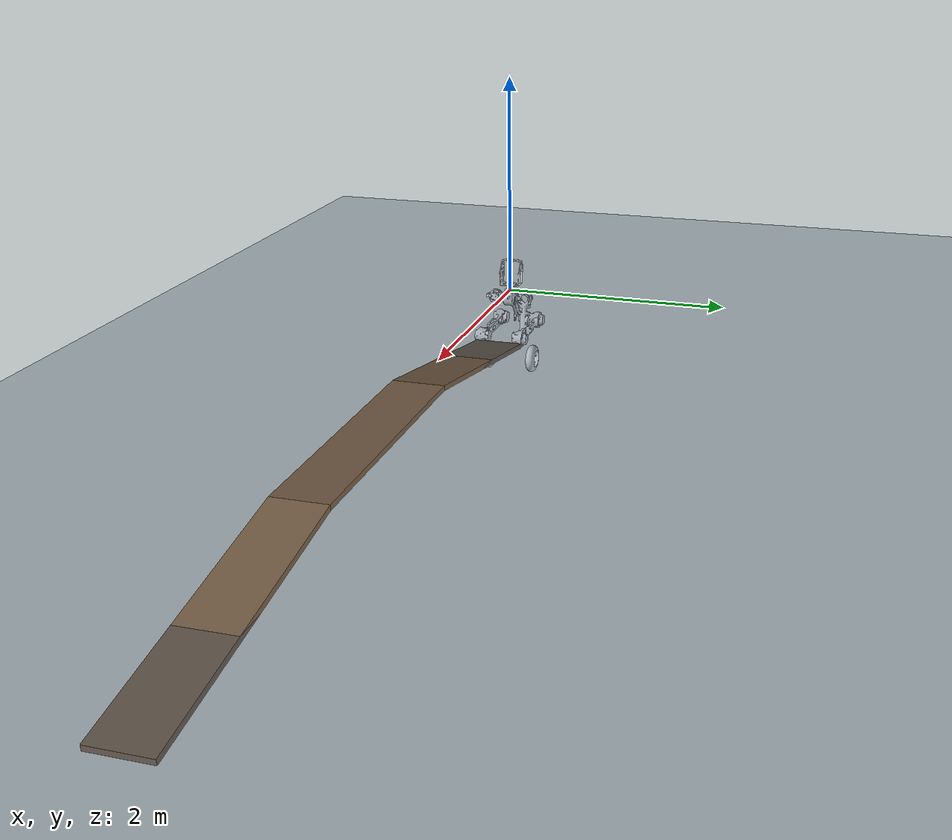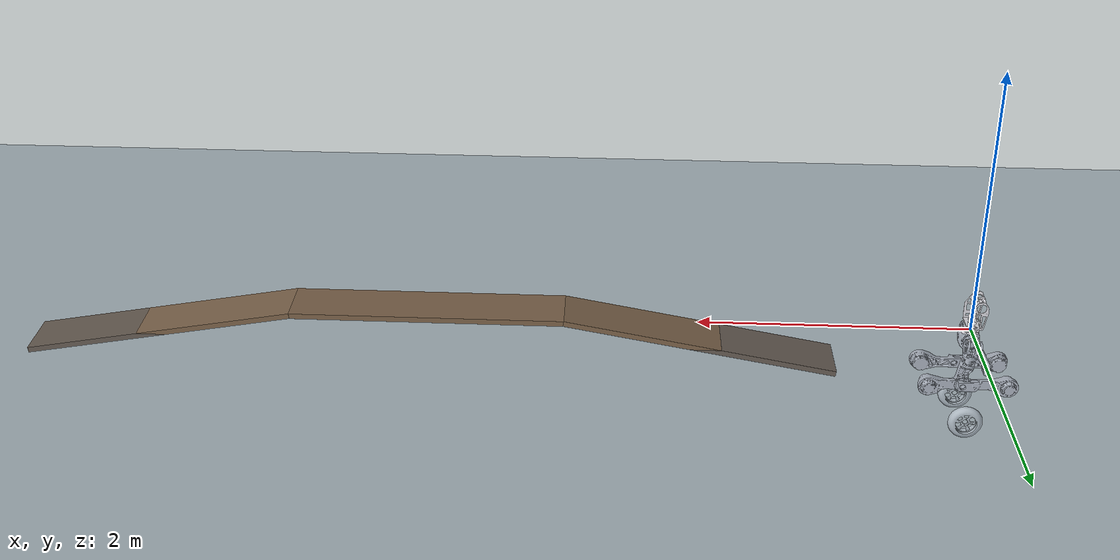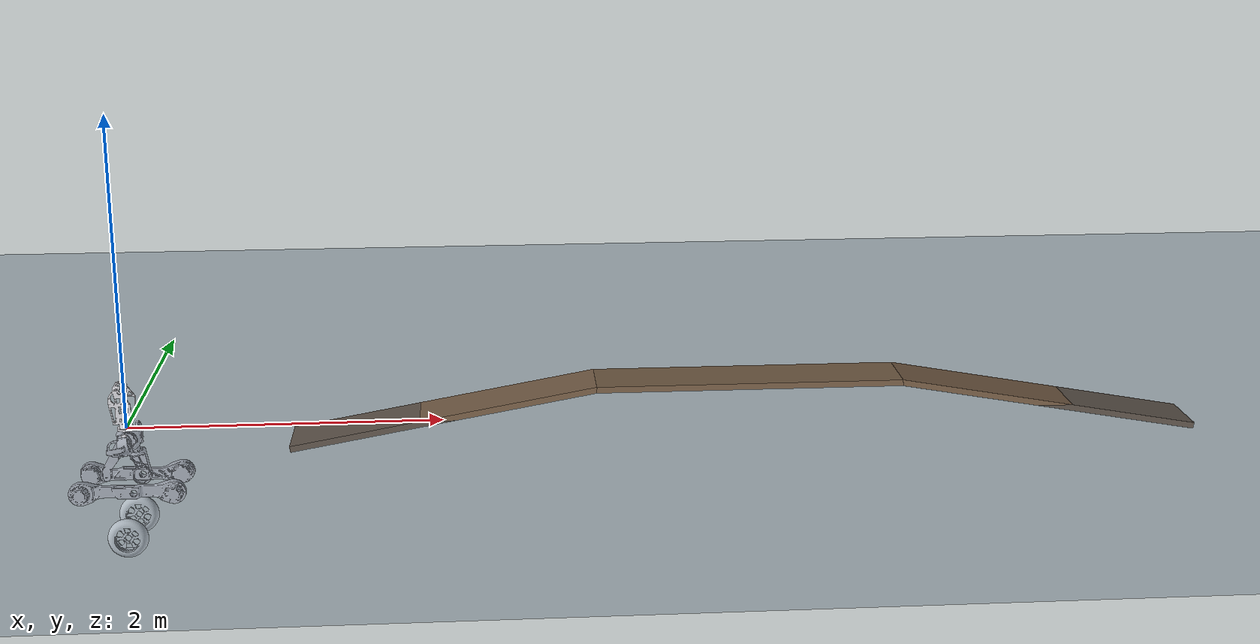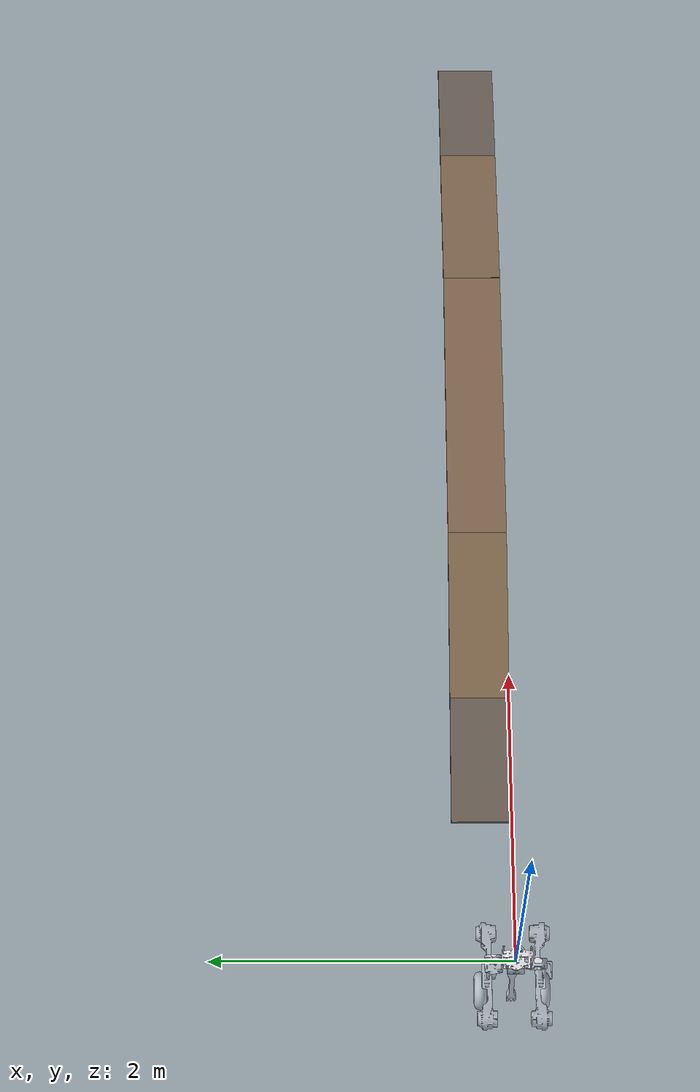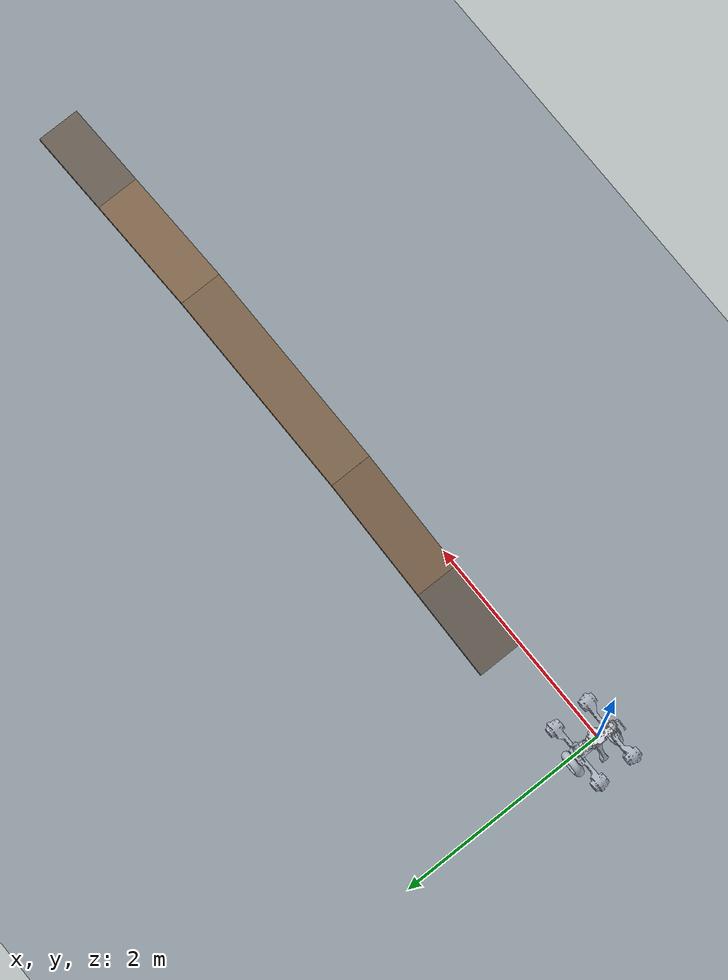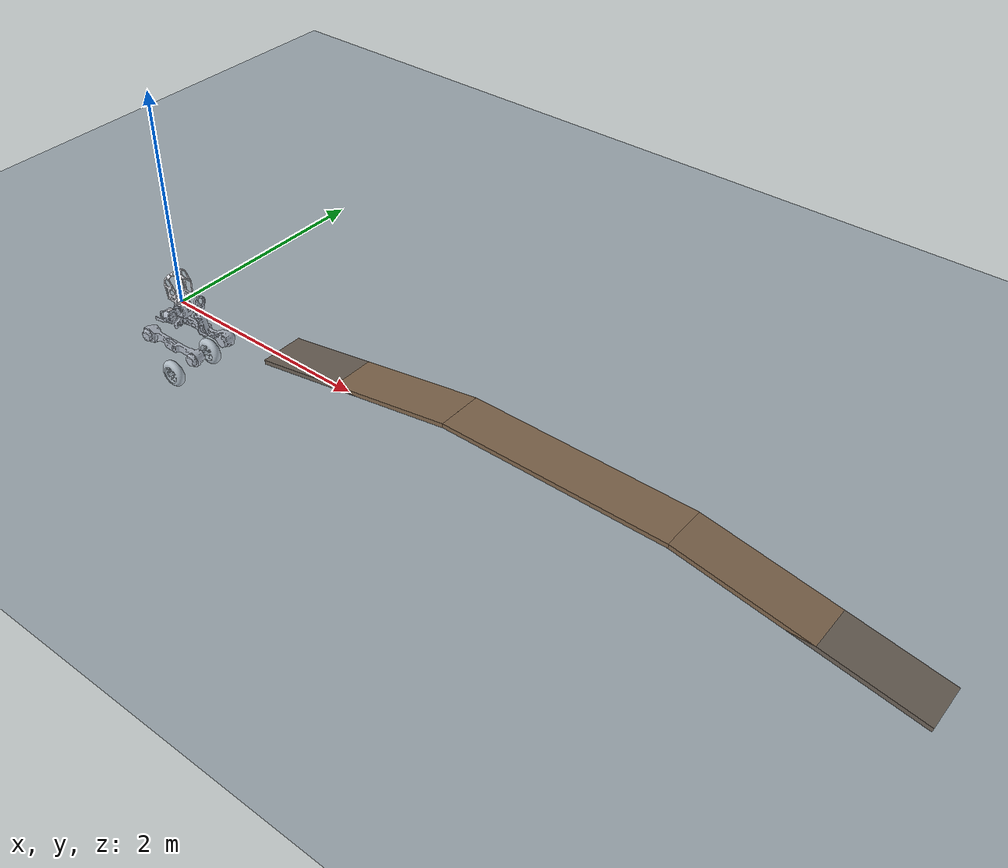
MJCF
<mujoco model="y4burdf20260114">
  <compiler angle="radian" meshdir="../meshes/"/>
<option timestep="0.005" integrator="RK4">
  </option>
  <default>
    <light castshadow="false" diffuse="1 1 1" />
    <camera fovy="60" />
    <default class="visual">
      <geom contype="0" conaffinity="0" group="1" type="mesh" rgba="0.9 0.9 0.9 1.0" />
    </default>
    <default class="collision">
      <geom contype="1" conaffinity="1" friction="1.0 0.01 0.005" rgba="0.9 0.3 0.4 0" margin="0.001" group="0" />
    </default>
    <joint damping="0.01" armature="0.01" frictionloss="0.5" />
  </default>
  <asset>
    <texture name="gridtex" type="2d" builtin="checker" width="512" height="512" rgb1="0.2 0.3 0.4" rgb2="0.3 0.4 0.5" mark="edge" markrgb="1 1 1"/>
    <material name="grid" texture="gridtex" texrepeat="4 4" reflectance="0.2"/>
    <mesh name="base_link" file="base_link.STL"/>
    <mesh name="left_hip_pitch_link" file="left_hip_pitch_link.STL"/>
    <mesh name="left_hip_roll_link" file="left_hip_roll_link.STL"/>
    <mesh name="left_knee_link" file="left_knee_link.STL"/>
    <mesh name="left_wheel_link" file="left_wheel_link.STL"/>
    <mesh name="right_hip_pitch_link" file="right_hip_pitch_link.STL"/>
    <mesh name="right_hip_roll_link" file="right_hip_roll_link.STL"/>
    <mesh name="right_knee_link" file="right_knee_link.STL"/>
    <mesh name="right_wheel_link" file="right_wheel_link.STL"/>
  </asset>

  <worldbody>
    <light pos="5 0 30" />
    <geom name="plane" type="plane" size="20 20 .01" material="grid" friction="1.0 0.02 0.01"/>
    <geom name="up_slope" type="box" size="1 0.2 0.02" pos="5.96 0.2 0" euler="0 0.1745 0" rgba="0.5 0.4 0.3 1"/>
    <geom name="flat" type="box" size="1 0.2 0.02" pos="3.98 0.2 0.173" euler="0 0 0" rgba="0.5 0.4 0.3 1"/>
    <geom name="down_slope" type="box" size="1 0.2 0.02" pos="2 0.2 0" euler="0 -0.1745 0" rgba="0.5 0.4 0.3 1"/>

    <body name="base_link">
      <inertial pos="-0.0017064 0.0025605 0.076642" quat="0.999193 -0.00313262 -0.0392308 -0.00807383" mass="9.3994" diaginertia="0.184448 0.172542 0.035176"/>
      <joint name="base_joint" type="free" limited="false" actuatorfrclimited="false"/>
      <geom type="mesh" contype="0" conaffinity="0" group="1" density="0" rgba="0.86667 0.86667 0.8902 1" mesh="base_link"/>
      <geom type="mesh" rgba="0.86667 0.86667 0.8902 1" mesh="base_link"/>
      <site name="imu" quat="1 0 0 0" />

      <body name="left_hip_pitch_link" pos="0.0055 0.05745 -0.069">
        <inertial pos="-0.0054202 0.080914 -0.00093706" quat="0.709093 0.699399 -0.0451707 0.0773758" mass="1.801" diaginertia="0.00402052 0.00309834 0.00287456"/>
        <joint name="left_hip_pitch_joint" pos="0 0 0" axis="0 1 0" range="-2.3562 3.0543" actuatorfrcrange="-90 90"/>
        <geom type="mesh" contype="0" conaffinity="0" group="1" density="0" rgba="0.86667 0.86667 0.8902 1" mesh="left_hip_pitch_link"/>
        <geom type="mesh" rgba="0.86667 0.86667 0.8902 1" mesh="left_hip_pitch_link"/>
        <body name="left_hip_roll_link" pos="0.03048 0.08605 0.0053744" quat="0.996195 0 -0.0871543 0">
          <inertial pos="-0.029905 -0.0004783 -0.20363" quat="0.704662 0.0153823 0.0183057 0.709141" mass="3.1782" diaginertia="0.0462438 0.0449155 0.0054117"/>
          <joint name="left_hip_roll_joint" pos="0 0 0" axis="1 0 0" range="-0.2618 1.7453" actuatorfrcrange="-90 90"/>
          <geom type="mesh" contype="0" conaffinity="0" group="1" density="0" rgba="0.86667 0.86667 0.8902 1" mesh="left_hip_roll_link"/>
          <geom type="mesh" rgba="0.86667 0.86667 0.8902 1" mesh="left_hip_roll_link"/>
          <body name="left_knee_link" pos="-0.03445 0.03495 -0.3" quat="0.996195 0 0.0871543 0">
            <inertial pos="-0.026177 -0.034696 -0.18407" quat="0.734518 0.0482931 0.0889443 0.670999" mass="1.5128" diaginertia="0.0254663 0.025255 0.00196623"/>
            <joint name="left_knee_joint" pos="0 0 0" axis="0 1 0" range="-0.33161 2.1991" actuatorfrcrange="-130 130"/>
            <geom type="mesh" contype="0" conaffinity="0" group="1" density="0" rgba="0.86667 0.86667 0.8902 1" mesh="left_knee_link"/>
            <geom type="mesh" rgba="0.86667 0.86667 0.8902 1" mesh="left_knee_link"/>
            <body name="left_wheel_link" pos="-0.052094 -0.01245 -0.29544">
              <inertial pos="0 0.041825 0" quat="0.707107 0 0 0.707107" mass="1.432" diaginertia="0.01217 0.00667054 0.00667054"/>
              <joint name="left_wheel_joint" pos="0 0 0" axis="0 1 0" range="-10000000 10000000" actuatorfrcrange="-60 60"/>
              <geom type="mesh" contype="0" conaffinity="0" group="1" density="0" rgba="0.89804 0.91765 0.92941 1" mesh="left_wheel_link"/>
              <geom type="mesh" rgba="0.89804 0.91765 0.92941 1" mesh="left_wheel_link"/>
            </body>
          </body>
        </body>
      </body>
      <body name="right_hip_pitch_link" pos="0.0055 -0.05745 -0.069">
        <inertial pos="-0.0054598 -0.080931 -0.00096148" quat="0.690889 0.717381 -0.0768817 0.0461221" mass="1.8053" diaginertia="0.00402881 0.00311284 0.00286896"/>
        <joint name="right_hip_pitch_joint" pos="0 0 0" axis="0 1 0" range="-2.3562 3.0543" actuatorfrcrange="-90 90"/>
        <geom type="mesh" contype="0" conaffinity="0" group="1" density="0" rgba="0.86667 0.86667 0.8902 1" mesh="right_hip_pitch_link"/>
        <geom type="mesh" rgba="0.86667 0.86667 0.8902 1" mesh="right_hip_pitch_link"/>
        <body name="right_hip_roll_link" pos="0.03048 -0.08605 0.0053744" quat="0.996195 0 -0.0871543 0">
          <inertial pos="-0.029835 0.00047888 -0.20347" quat="0.707879 0.0180638 0.0152848 0.705937" mass="3.1782" diaginertia="0.0461425 0.0448138 0.00541213"/>
          <joint name="right_hip_roll_joint" pos="0 0 0" axis="1 0 0" range="-1.7453 0.2618" actuatorfrcrange="-90 90"/>
          <geom type="mesh" contype="0" conaffinity="0" group="1" density="0" rgba="0.86667 0.86667 0.8902 1" mesh="right_hip_roll_link"/>
          <geom type="mesh" rgba="0.86667 0.86667 0.8902 1" mesh="right_hip_roll_link"/>
          <body name="right_knee_link" pos="-0.03445 -0.03495 -0.3" quat="0.996195 0 0.0871543 0">
            <inertial pos="-0.026177 0.034694 -0.18407" quat="0.670937 0.0889486 0.0482842 0.734575" mass="1.5128" diaginertia="0.0254663 0.0252552 0.00196636"/>
            <joint name="right_knee_joint" pos="0 0 0" axis="0 1 0" range="-0.33161 2.1991" actuatorfrcrange="-130 130"/>
            <geom type="mesh" contype="0" conaffinity="0" group="1" density="0" rgba="0.86667 0.86667 0.8902 1" mesh="right_knee_link"/>
            <geom type="mesh" rgba="0.86667 0.86667 0.8902 1" mesh="right_knee_link"/>
            <body name="right_wheel_link" pos="-0.052094 0.01245 -0.29544">
              <inertial pos="0 -0.041825 0" quat="0.707107 0 0 0.707107" mass="1.432" diaginertia="0.01217 0.00667054 0.00667054"/>
              <joint name="right_wheel_joint" pos="0 0 0" axis="0 1 0" range="-10000000 10000000" actuatorfrcrange="-60 60"/>
              <geom type="mesh" contype="0" conaffinity="0" group="1" density="0" rgba="0.89804 0.91765 0.92941 1" mesh="right_wheel_link"/>
              <geom type="mesh" rgba="0.89804 0.91765 0.92941 1" mesh="right_wheel_link"/>
            </body>
          </body>
        </body>
      </body>

    </body>
  </worldbody>

 <actuator>
    <motor joint="left_hip_pitch_joint" name="left_hip_pitch_joint" ctrllimited="true" ctrlrange="-200 200" />
    <motor joint="left_hip_roll_joint" name="left_hip_roll_joint" ctrllimited="true" ctrlrange="-200 200" />
    <motor joint="left_knee_joint" name="left_knee_joint" ctrllimited="true" ctrlrange="-200 200" />
    <motor joint="left_wheel_joint" name="left_wheel_joint" ctrllimited="true" ctrlrange="-200 200" />
    <motor joint="right_hip_pitch_joint" name="right_hip_pitch_joint" ctrllimited="true" ctrlrange="-200 200" />
    <motor joint="right_hip_roll_joint" name="right_hip_roll_joint" ctrllimited="true" ctrlrange="-200 200" />
    <motor joint="right_knee_joint" name="right_knee_joint" ctrllimited="true" ctrlrange="-200 200" />
    <motor joint="right_wheel_joint" name="right_wheel_joint" ctrllimited="true" ctrlrange="-200 200" />
</actuator>

   <sensor>
    <actuatorpos name="left_hip_pitch_joint_p" actuator="left_hip_pitch_joint" />
    <actuatorvel name="left_hip_pitch_joint_v" actuator="left_hip_pitch_joint" />
    <actuatorfrc name="left_hip_pitch_joint_f" actuator="left_hip_pitch_joint" noise="0.001" />
    <actuatorpos name="left_hip_roll_joint_p" actuator="left_hip_roll_joint" />
    <actuatorvel name="left_hip_roll_joint_v" actuator="left_hip_roll_joint" />
    <actuatorfrc name="left_hip_roll_joint_f" actuator="left_hip_roll_joint" noise="0.001" />
    <actuatorpos name="left_knee_joint_p" actuator="left_knee_joint" />
    <actuatorvel name="left_knee_joint_v" actuator="left_knee_joint" />
    <actuatorfrc name="left_knee_joint_f" actuator="left_knee_joint" noise="0.001" />
    <actuatorpos name="left_wheel_joint_p" actuator="left_wheel_joint" />
    <actuatorvel name="left_wheel_joint_v" actuator="left_wheel_joint" />
    <actuatorfrc name="left_wheel_joint_f" actuator="left_wheel_joint" noise="0.001" />

    <actuatorpos name="right_hip_pitch_joint_p" actuator="right_hip_pitch_joint" />
    <actuatorvel name="right_hip_pitch_joint_v" actuator="right_hip_pitch_joint" />
    <actuatorfrc name="right_hip_pitch_joint_f" actuator="right_hip_pitch_joint" noise="0.001" />
    <actuatorpos name="right_hip_roll_joint_p" actuator="right_hip_roll_joint" />
    <actuatorvel name="right_hip_roll_joint_v" actuator="right_hip_roll_joint" />
    <actuatorfrc name="right_hip_roll_joint_f" actuator="right_hip_roll_joint" noise="0.001" />
    <actuatorpos name="right_knee_joint_p" actuator="right_knee_joint" />
    <actuatorvel name="right_knee_joint_v" actuator="right_knee_joint" />
    <actuatorfrc name="right_knee_joint_f" actuator="right_knee_joint" noise="0.001" />
    <actuatorpos name="right_wheel_joint_p" actuator="right_wheel_joint" />
    <actuatorvel name="right_wheel_joint_v" actuator="right_wheel_joint" />
    <actuatorfrc name="right_wheel_joint_f" actuator="right_wheel_joint" noise="0.001" />

    <framequat name='orientation' objtype='site' noise='0.001' objname='imu'/>
    <framepos name='position' objtype='site' noise='0.001' objname='imu'/>
    <gyro name='angular-velocity' site='imu' noise='0.005' cutoff='34.9'/>
    <velocimeter name='linear-velocity' site='imu' noise='0.001' cutoff='30'/>
    <accelerometer name='linear-acceleration' site='imu' noise='0.005' cutoff='157'/>
    <magnetometer name='magnetometer' site='imu'/>
  </sensor>

  <keyframe>
    <!--两轮平衡-->
    <key time="0" qpos="0 0 0.737 1 0 0 0
    -0.349066 0 0.547283 0
    -0.349066 0 0.547283 0" />
    <!--蹲姿起立-->
  </keyframe>

</mujoco>
